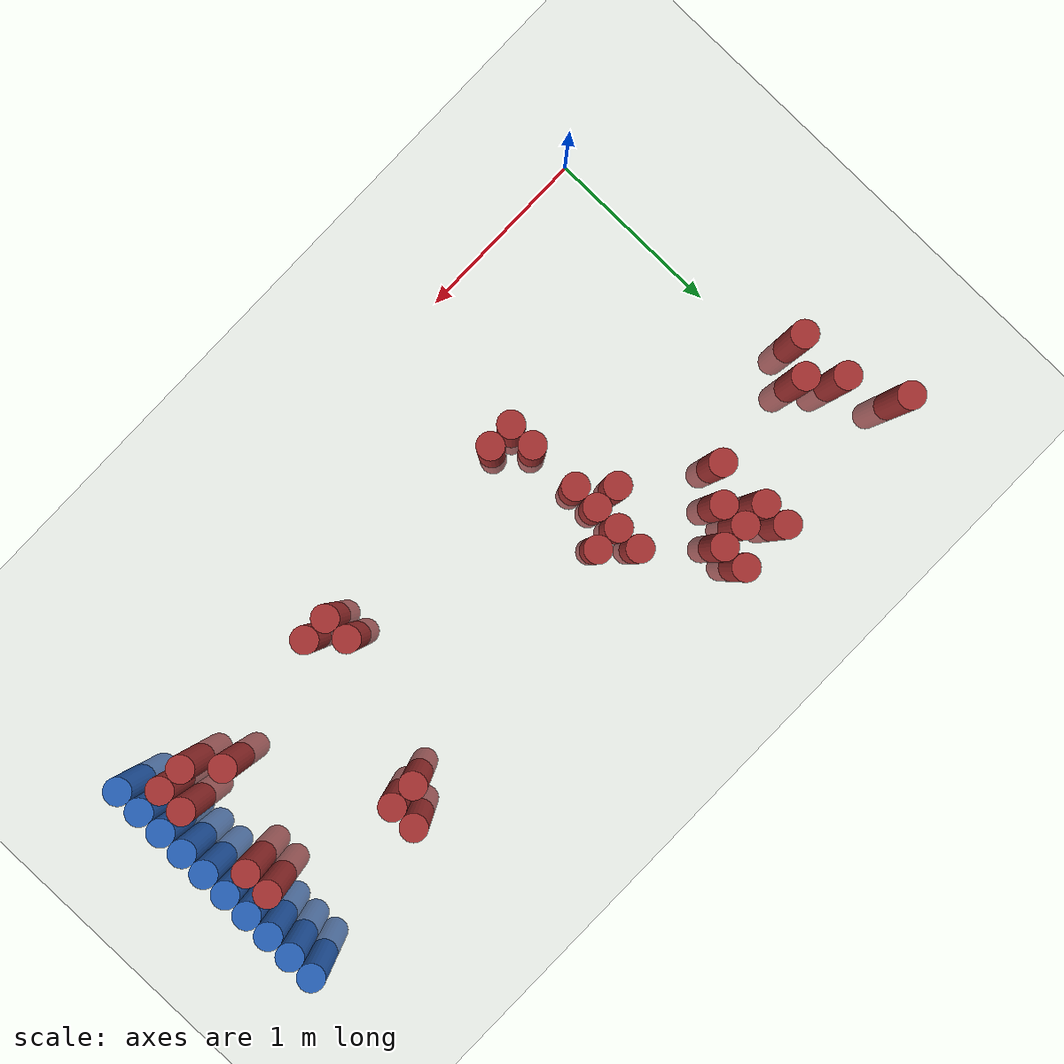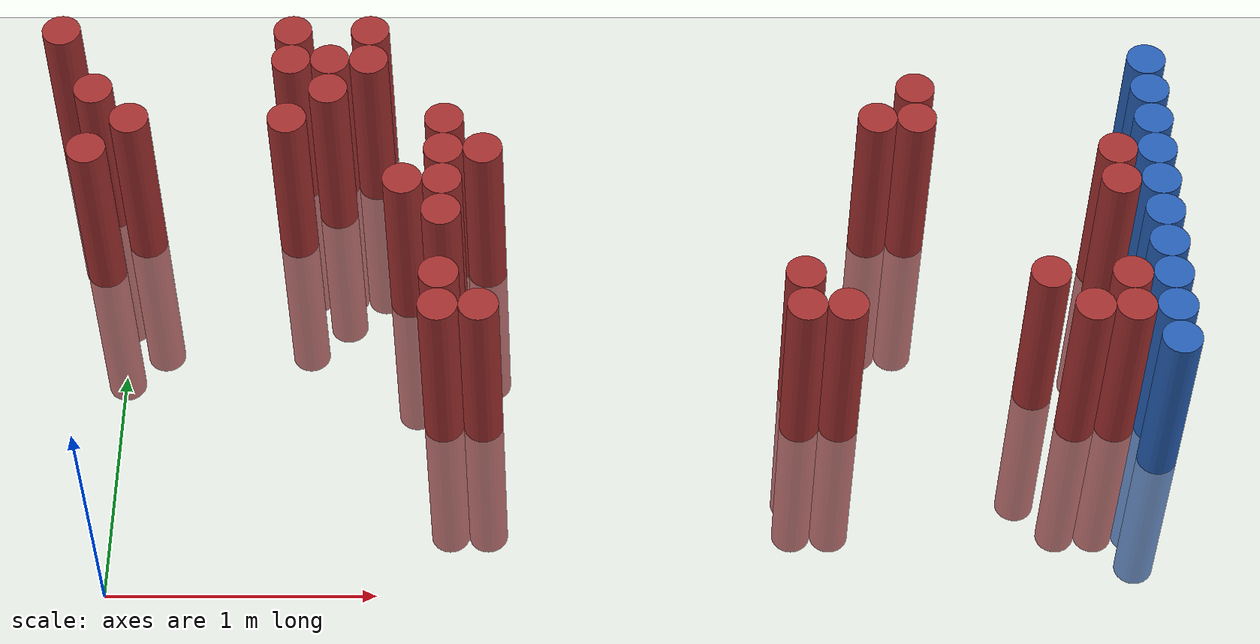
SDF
<sdf version="1.6">
 <world name="default">
  <model name="ground_plane">
   <static>1</static>
   <link name="link">
    <collision name="collision">
     <geometry><plane><normal>0 0 1</normal><size>100 100</size></plane></geometry>
     <surface><friction><ode><mu>100</mu><mu2>50</mu2></ode></friction></surface>
    </collision>
    <visual name="visual">
     <cast_shadows>0</cast_shadows>
     <geometry><plane><normal>0 0 1</normal><size>100 100</size></plane></geometry>
     <material>
      <script><uri>file://media/materials/scripts/gazebo.material</uri><name>Gazebo/Grey</name></script>
     </material>
    </visual>
   </link>
  </model>
  <model name="unit_cylinder_124">
   <static>1</static>
   <pose>3.925000 0.775000 0.000000 0.000000 0.000000 0.000000</pose>
   <link name="link">
    <inertial>
     <mass>1</mass>
     <inertia><ixx>0.145833</ixx><ixy>0</ixy><ixz>0</ixz><iyy>0.145833</iyy><iyz>0</iyz><izz>0.125</izz></inertia>
    </inertial>
    <collision name="collision">
     <geometry><cylinder><radius>0.075000</radius><length>1.5</length></cylinder></geometry>
    </collision>
    <visual name="visual">
     <geometry><cylinder><radius>0.075000</radius><length>1.5</length></cylinder></geometry>
     <material>
      <ambient>0.152000 0.379000 0.720000 1</ambient>
      <diffuse>0.152000 0.379000 0.720000 1</diffuse>
     </material>
     <material>
      <script><name>Gazebo/Grey</name><uri>file://media/materials/scripts/gazebo.material</uri></script>
     </material>
    </visual>
   </link>
  </model>
  <model name="unit_cylinder_126">
   <static>1</static>
   <pose>3.925000 0.925000 0.000000 0.000000 0.000000 0.000000</pose>
   <link name="link">
    <inertial>
     <mass>1</mass>
     <inertia><ixx>0.145833</ixx><ixy>0</ixy><ixz>0</ixz><iyy>0.145833</iyy><iyz>0</iyz><izz>0.125</izz></inertia>
    </inertial>
    <collision name="collision">
     <geometry><cylinder><radius>0.075000</radius><length>1.5</length></cylinder></geometry>
    </collision>
    <visual name="visual">
     <geometry><cylinder><radius>0.075000</radius><length>1.5</length></cylinder></geometry>
     <material>
      <ambient>0.152000 0.379000 0.720000 1</ambient>
      <diffuse>0.152000 0.379000 0.720000 1</diffuse>
     </material>
     <material>
      <script><name>Gazebo/Grey</name><uri>file://media/materials/scripts/gazebo.material</uri></script>
     </material>
    </visual>
   </link>
  </model>
  <model name="unit_cylinder_128">
   <static>1</static>
   <pose>3.925000 1.075000 0.000000 0.000000 0.000000 0.000000</pose>
   <link name="link">
    <inertial>
     <mass>1</mass>
     <inertia><ixx>0.145833</ixx><ixy>0</ixy><ixz>0</ixz><iyy>0.145833</iyy><iyz>0</iyz><izz>0.125</izz></inertia>
    </inertial>
    <collision name="collision">
     <geometry><cylinder><radius>0.075000</radius><length>1.5</length></cylinder></geometry>
    </collision>
    <visual name="visual">
     <geometry><cylinder><radius>0.075000</radius><length>1.5</length></cylinder></geometry>
     <material>
      <ambient>0.152000 0.379000 0.720000 1</ambient>
      <diffuse>0.152000 0.379000 0.720000 1</diffuse>
     </material>
     <material>
      <script><name>Gazebo/Grey</name><uri>file://media/materials/scripts/gazebo.material</uri></script>
     </material>
    </visual>
   </link>
  </model>
  <model name="unit_cylinder_130">
   <static>1</static>
   <pose>3.925000 1.225000 0.000000 0.000000 0.000000 0.000000</pose>
   <link name="link">
    <inertial>
     <mass>1</mass>
     <inertia><ixx>0.145833</ixx><ixy>0</ixy><ixz>0</ixz><iyy>0.145833</iyy><iyz>0</iyz><izz>0.125</izz></inertia>
    </inertial>
    <collision name="collision">
     <geometry><cylinder><radius>0.075000</radius><length>1.5</length></cylinder></geometry>
    </collision>
    <visual name="visual">
     <geometry><cylinder><radius>0.075000</radius><length>1.5</length></cylinder></geometry>
     <material>
      <ambient>0.152000 0.379000 0.720000 1</ambient>
      <diffuse>0.152000 0.379000 0.720000 1</diffuse>
     </material>
     <material>
      <script><name>Gazebo/Grey</name><uri>file://media/materials/scripts/gazebo.material</uri></script>
     </material>
    </visual>
   </link>
  </model>
  <model name="unit_cylinder_132">
   <static>1</static>
   <pose>3.925000 1.375000 0.000000 0.000000 0.000000 0.000000</pose>
   <link name="link">
    <inertial>
     <mass>1</mass>
     <inertia><ixx>0.145833</ixx><ixy>0</ixy><ixz>0</ixz><iyy>0.145833</iyy><iyz>0</iyz><izz>0.125</izz></inertia>
    </inertial>
    <collision name="collision">
     <geometry><cylinder><radius>0.075000</radius><length>1.5</length></cylinder></geometry>
    </collision>
    <visual name="visual">
     <geometry><cylinder><radius>0.075000</radius><length>1.5</length></cylinder></geometry>
     <material>
      <ambient>0.152000 0.379000 0.720000 1</ambient>
      <diffuse>0.152000 0.379000 0.720000 1</diffuse>
     </material>
     <material>
      <script><name>Gazebo/Grey</name><uri>file://media/materials/scripts/gazebo.material</uri></script>
     </material>
    </visual>
   </link>
  </model>
  <model name="unit_cylinder_134">
   <static>1</static>
   <pose>3.925000 1.525000 0.000000 0.000000 0.000000 0.000000</pose>
   <link name="link">
    <inertial>
     <mass>1</mass>
     <inertia><ixx>0.145833</ixx><ixy>0</ixy><ixz>0</ixz><iyy>0.145833</iyy><iyz>0</iyz><izz>0.125</izz></inertia>
    </inertial>
    <collision name="collision">
     <geometry><cylinder><radius>0.075000</radius><length>1.5</length></cylinder></geometry>
    </collision>
    <visual name="visual">
     <geometry><cylinder><radius>0.075000</radius><length>1.5</length></cylinder></geometry>
     <material>
      <ambient>0.152000 0.379000 0.720000 1</ambient>
      <diffuse>0.152000 0.379000 0.720000 1</diffuse>
     </material>
     <material>
      <script><name>Gazebo/Grey</name><uri>file://media/materials/scripts/gazebo.material</uri></script>
     </material>
    </visual>
   </link>
  </model>
  <model name="unit_cylinder_136">
   <static>1</static>
   <pose>3.925000 1.675000 0.000000 0.000000 0.000000 0.000000</pose>
   <link name="link">
    <inertial>
     <mass>1</mass>
     <inertia><ixx>0.145833</ixx><ixy>0</ixy><ixz>0</ixz><iyy>0.145833</iyy><iyz>0</iyz><izz>0.125</izz></inertia>
    </inertial>
    <collision name="collision">
     <geometry><cylinder><radius>0.075000</radius><length>1.5</length></cylinder></geometry>
    </collision>
    <visual name="visual">
     <geometry><cylinder><radius>0.075000</radius><length>1.5</length></cylinder></geometry>
     <material>
      <ambient>0.152000 0.379000 0.720000 1</ambient>
      <diffuse>0.152000 0.379000 0.720000 1</diffuse>
     </material>
     <material>
      <script><name>Gazebo/Grey</name><uri>file://media/materials/scripts/gazebo.material</uri></script>
     </material>
    </visual>
   </link>
  </model>
  <model name="unit_cylinder_138">
   <static>1</static>
   <pose>3.925000 1.825000 0.000000 0.000000 0.000000 0.000000</pose>
   <link name="link">
    <inertial>
     <mass>1</mass>
     <inertia><ixx>0.145833</ixx><ixy>0</ixy><ixz>0</ixz><iyy>0.145833</iyy><iyz>0</iyz><izz>0.125</izz></inertia>
    </inertial>
    <collision name="collision">
     <geometry><cylinder><radius>0.075000</radius><length>1.5</length></cylinder></geometry>
    </collision>
    <visual name="visual">
     <geometry><cylinder><radius>0.075000</radius><length>1.5</length></cylinder></geometry>
     <material>
      <ambient>0.152000 0.379000 0.720000 1</ambient>
      <diffuse>0.152000 0.379000 0.720000 1</diffuse>
     </material>
     <material>
      <script><name>Gazebo/Grey</name><uri>file://media/materials/scripts/gazebo.material</uri></script>
     </material>
    </visual>
   </link>
  </model>
  <model name="unit_cylinder_140">
   <static>1</static>
   <pose>3.925000 1.975000 0.000000 0.000000 0.000000 0.000000</pose>
   <link name="link">
    <inertial>
     <mass>1</mass>
     <inertia><ixx>0.145833</ixx><ixy>0</ixy><ixz>0</ixz><iyy>0.145833</iyy><iyz>0</iyz><izz>0.125</izz></inertia>
    </inertial>
    <collision name="collision">
     <geometry><cylinder><radius>0.075000</radius><length>1.5</length></cylinder></geometry>
    </collision>
    <visual name="visual">
     <geometry><cylinder><radius>0.075000</radius><length>1.5</length></cylinder></geometry>
     <material>
      <ambient>0.152000 0.379000 0.720000 1</ambient>
      <diffuse>0.152000 0.379000 0.720000 1</diffuse>
     </material>
     <material>
      <script><name>Gazebo/Grey</name><uri>file://media/materials/scripts/gazebo.material</uri></script>
     </material>
    </visual>
   </link>
  </model>
  <model name="unit_cylinder_378">
   <static>1</static>
   <pose>-0.275000 2.125000 0.000000 0.000000 0.000000 0.000000</pose>
   <link name="link">
    <inertial>
     <mass>1</mass>
     <inertia><ixx>0.145833</ixx><ixy>0</ixy><ixz>0</ixz><iyy>0.145833</iyy><iyz>0</iyz><izz>0.125</izz></inertia>
    </inertial>
    <collision name="collision">
     <geometry><cylinder><radius>0.075000</radius><length>1.5</length></cylinder></geometry>
    </collision>
    <visual name="visual">
     <geometry><cylinder><radius>0.075000</radius><length>1.5</length></cylinder></geometry>
     <material>
      <ambient>0.648000 0.192000 0.192000 1</ambient>
      <diffuse>0.648000 0.192000 0.192000 1</diffuse>
     </material>
     <material>
      <script><name>Gazebo/Grey</name><uri>file://media/materials/scripts/gazebo.material</uri></script>
     </material>
    </visual>
   </link>
  </model>
  <model name="unit_cylinder_387">
   <static>1</static>
   <pose>-0.125000 1.525000 0.000000 0.000000 0.000000 0.000000</pose>
   <link name="link">
    <inertial>
     <mass>1</mass>
     <inertia><ixx>0.145833</ixx><ixy>0</ixy><ixz>0</ixz><iyy>0.145833</iyy><iyz>0</iyz><izz>0.125</izz></inertia>
    </inertial>
    <collision name="collision">
     <geometry><cylinder><radius>0.075000</radius><length>1.5</length></cylinder></geometry>
    </collision>
    <visual name="visual">
     <geometry><cylinder><radius>0.075000</radius><length>1.5</length></cylinder></geometry>
     <material>
      <ambient>0.648000 0.192000 0.192000 1</ambient>
      <diffuse>0.648000 0.192000 0.192000 1</diffuse>
     </material>
     <material>
      <script><name>Gazebo/Grey</name><uri>file://media/materials/scripts/gazebo.material</uri></script>
     </material>
    </visual>
   </link>
  </model>
  <model name="unit_cylinder_388">
   <static>1</static>
   <pose>-0.125000 1.825000 0.000000 0.000000 0.000000 0.000000</pose>
   <link name="link">
    <inertial>
     <mass>1</mass>
     <inertia><ixx>0.145833</ixx><ixy>0</ixy><ixz>0</ixz><iyy>0.145833</iyy><iyz>0</iyz><izz>0.125</izz></inertia>
    </inertial>
    <collision name="collision">
     <geometry><cylinder><radius>0.075000</radius><length>1.5</length></cylinder></geometry>
    </collision>
    <visual name="visual">
     <geometry><cylinder><radius>0.075000</radius><length>1.5</length></cylinder></geometry>
     <material>
      <ambient>0.648000 0.192000 0.192000 1</ambient>
      <diffuse>0.648000 0.192000 0.192000 1</diffuse>
     </material>
     <material>
      <script><name>Gazebo/Grey</name><uri>file://media/materials/scripts/gazebo.material</uri></script>
     </material>
    </visual>
   </link>
  </model>
  <model name="unit_cylinder_393">
   <static>1</static>
   <pose>0.025000 1.675000 0.000000 0.000000 0.000000 0.000000</pose>
   <link name="link">
    <inertial>
     <mass>1</mass>
     <inertia><ixx>0.145833</ixx><ixy>0</ixy><ixz>0</ixz><iyy>0.145833</iyy><iyz>0</iyz><izz>0.125</izz></inertia>
    </inertial>
    <collision name="collision">
     <geometry><cylinder><radius>0.075000</radius><length>1.5</length></cylinder></geometry>
    </collision>
    <visual name="visual">
     <geometry><cylinder><radius>0.075000</radius><length>1.5</length></cylinder></geometry>
     <material>
      <ambient>0.648000 0.192000 0.192000 1</ambient>
      <diffuse>0.648000 0.192000 0.192000 1</diffuse>
     </material>
     <material>
      <script><name>Gazebo/Grey</name><uri>file://media/materials/scripts/gazebo.material</uri></script>
     </material>
    </visual>
   </link>
  </model>
  <model name="unit_cylinder_405">
   <static>1</static>
   <pose>0.625000 1.675000 0.000000 0.000000 0.000000 0.000000</pose>
   <link name="link">
    <inertial>
     <mass>1</mass>
     <inertia><ixx>0.145833</ixx><ixy>0</ixy><ixz>0</ixz><iyy>0.145833</iyy><iyz>0</iyz><izz>0.125</izz></inertia>
    </inertial>
    <collision name="collision">
     <geometry><cylinder><radius>0.075000</radius><length>1.5</length></cylinder></geometry>
    </collision>
    <visual name="visual">
     <geometry><cylinder><radius>0.075000</radius><length>1.5</length></cylinder></geometry>
     <material>
      <ambient>0.648000 0.192000 0.192000 1</ambient>
      <diffuse>0.648000 0.192000 0.192000 1</diffuse>
     </material>
     <material>
      <script><name>Gazebo/Grey</name><uri>file://media/materials/scripts/gazebo.material</uri></script>
     </material>
    </visual>
   </link>
  </model>
  <model name="unit_cylinder_406">
   <static>1</static>
   <pose>0.625000 1.975000 0.000000 0.000000 0.000000 0.000000</pose>
   <link name="link">
    <inertial>
     <mass>1</mass>
     <inertia><ixx>0.145833</ixx><ixy>0</ixy><ixz>0</ixz><iyy>0.145833</iyy><iyz>0</iyz><izz>0.125</izz></inertia>
    </inertial>
    <collision name="collision">
     <geometry><cylinder><radius>0.075000</radius><length>1.5</length></cylinder></geometry>
    </collision>
    <visual name="visual">
     <geometry><cylinder><radius>0.075000</radius><length>1.5</length></cylinder></geometry>
     <material>
      <ambient>0.648000 0.192000 0.192000 1</ambient>
      <diffuse>0.648000 0.192000 0.192000 1</diffuse>
     </material>
     <material>
      <script><name>Gazebo/Grey</name><uri>file://media/materials/scripts/gazebo.material</uri></script>
     </material>
    </visual>
   </link>
  </model>
  <model name="unit_cylinder_407">
   <static>1</static>
   <pose>0.625000 2.125000 0.000000 0.000000 0.000000 0.000000</pose>
   <link name="link">
    <inertial>
     <mass>1</mass>
     <inertia><ixx>0.145833</ixx><ixy>0</ixy><ixz>0</ixz><iyy>0.145833</iyy><iyz>0</iyz><izz>0.125</izz></inertia>
    </inertial>
    <collision name="collision">
     <geometry><cylinder><radius>0.075000</radius><length>1.5</length></cylinder></geometry>
    </collision>
    <visual name="visual">
     <geometry><cylinder><radius>0.075000</radius><length>1.5</length></cylinder></geometry>
     <material>
      <ambient>0.648000 0.192000 0.192000 1</ambient>
      <diffuse>0.648000 0.192000 0.192000 1</diffuse>
     </material>
     <material>
      <script><name>Gazebo/Grey</name><uri>file://media/materials/scripts/gazebo.material</uri></script>
     </material>
    </visual>
   </link>
  </model>
  <model name="unit_cylinder_410">
   <static>1</static>
   <pose>0.775000 1.825000 0.000000 0.000000 0.000000 0.000000</pose>
   <link name="link">
    <inertial>
     <mass>1</mass>
     <inertia><ixx>0.145833</ixx><ixy>0</ixy><ixz>0</ixz><iyy>0.145833</iyy><iyz>0</iyz><izz>0.125</izz></inertia>
    </inertial>
    <collision name="collision">
     <geometry><cylinder><radius>0.075000</radius><length>1.5</length></cylinder></geometry>
    </collision>
    <visual name="visual">
     <geometry><cylinder><radius>0.075000</radius><length>1.5</length></cylinder></geometry>
     <material>
      <ambient>0.648000 0.192000 0.192000 1</ambient>
      <diffuse>0.648000 0.192000 0.192000 1</diffuse>
     </material>
     <material>
      <script><name>Gazebo/Grey</name><uri>file://media/materials/scripts/gazebo.material</uri></script>
     </material>
    </visual>
   </link>
  </model>
  <model name="unit_cylinder_411">
   <static>1</static>
   <pose>0.775000 1.975000 0.000000 0.000000 0.000000 0.000000</pose>
   <link name="link">
    <inertial>
     <mass>1</mass>
     <inertia><ixx>0.145833</ixx><ixy>0</ixy><ixz>0</ixz><iyy>0.145833</iyy><iyz>0</iyz><izz>0.125</izz></inertia>
    </inertial>
    <collision name="collision">
     <geometry><cylinder><radius>0.075000</radius><length>1.5</length></cylinder></geometry>
    </collision>
    <visual name="visual">
     <geometry><cylinder><radius>0.075000</radius><length>1.5</length></cylinder></geometry>
     <material>
      <ambient>0.648000 0.192000 0.192000 1</ambient>
      <diffuse>0.648000 0.192000 0.192000 1</diffuse>
     </material>
     <material>
      <script><name>Gazebo/Grey</name><uri>file://media/materials/scripts/gazebo.material</uri></script>
     </material>
    </visual>
   </link>
  </model>
  <model name="unit_cylinder_416">
   <static>1</static>
   <pose>0.925000 1.975000 0.000000 0.000000 0.000000 0.000000</pose>
   <link name="link">
    <inertial>
     <mass>1</mass>
     <inertia><ixx>0.145833</ixx><ixy>0</ixy><ixz>0</ixz><iyy>0.145833</iyy><iyz>0</iyz><izz>0.125</izz></inertia>
    </inertial>
    <collision name="collision">
     <geometry><cylinder><radius>0.075000</radius><length>1.5</length></cylinder></geometry>
    </collision>
    <visual name="visual">
     <geometry><cylinder><radius>0.075000</radius><length>1.5</length></cylinder></geometry>
     <material>
      <ambient>0.648000 0.192000 0.192000 1</ambient>
      <diffuse>0.648000 0.192000 0.192000 1</diffuse>
     </material>
     <material>
      <script><name>Gazebo/Grey</name><uri>file://media/materials/scripts/gazebo.material</uri></script>
     </material>
    </visual>
   </link>
  </model>
  <model name="unit_cylinder_417">
   <static>1</static>
   <pose>0.925000 2.125000 0.000000 0.000000 0.000000 0.000000</pose>
   <link name="link">
    <inertial>
     <mass>1</mass>
     <inertia><ixx>0.145833</ixx><ixy>0</ixy><ixz>0</ixz><iyy>0.145833</iyy><iyz>0</iyz><izz>0.125</izz></inertia>
    </inertial>
    <collision name="collision">
     <geometry><cylinder><radius>0.075000</radius><length>1.5</length></cylinder></geometry>
    </collision>
    <visual name="visual">
     <geometry><cylinder><radius>0.075000</radius><length>1.5</length></cylinder></geometry>
     <material>
      <ambient>0.648000 0.192000 0.192000 1</ambient>
      <diffuse>0.648000 0.192000 0.192000 1</diffuse>
     </material>
     <material>
      <script><name>Gazebo/Grey</name><uri>file://media/materials/scripts/gazebo.material</uri></script>
     </material>
    </visual>
   </link>
  </model>
  <model name="unit_cylinder_419">
   <static>1</static>
   <pose>1.075000 1.375000 0.000000 0.000000 0.000000 0.000000</pose>
   <link name="link">
    <inertial>
     <mass>1</mass>
     <inertia><ixx>0.145833</ixx><ixy>0</ixy><ixz>0</ixz><iyy>0.145833</iyy><iyz>0</iyz><izz>0.125</izz></inertia>
    </inertial>
    <collision name="collision">
     <geometry><cylinder><radius>0.075000</radius><length>1.5</length></cylinder></geometry>
    </collision>
    <visual name="visual">
     <geometry><cylinder><radius>0.075000</radius><length>1.5</length></cylinder></geometry>
     <material>
      <ambient>0.648000 0.192000 0.192000 1</ambient>
      <diffuse>0.648000 0.192000 0.192000 1</diffuse>
     </material>
     <material>
      <script><name>Gazebo/Grey</name><uri>file://media/materials/scripts/gazebo.material</uri></script>
     </material>
    </visual>
   </link>
  </model>
  <model name="unit_cylinder_421">
   <static>1</static>
   <pose>1.225000 0.775000 0.000000 0.000000 0.000000 0.000000</pose>
   <link name="link">
    <inertial>
     <mass>1</mass>
     <inertia><ixx>0.145833</ixx><ixy>0</ixy><ixz>0</ixz><iyy>0.145833</iyy><iyz>0</iyz><izz>0.125</izz></inertia>
    </inertial>
    <collision name="collision">
     <geometry><cylinder><radius>0.075000</radius><length>1.5</length></cylinder></geometry>
    </collision>
    <visual name="visual">
     <geometry><cylinder><radius>0.075000</radius><length>1.5</length></cylinder></geometry>
     <material>
      <ambient>0.648000 0.192000 0.192000 1</ambient>
      <diffuse>0.648000 0.192000 0.192000 1</diffuse>
     </material>
     <material>
      <script><name>Gazebo/Grey</name><uri>file://media/materials/scripts/gazebo.material</uri></script>
     </material>
    </visual>
   </link>
  </model>
  <model name="unit_cylinder_422">
   <static>1</static>
   <pose>1.225000 0.925000 0.000000 0.000000 0.000000 0.000000</pose>
   <link name="link">
    <inertial>
     <mass>1</mass>
     <inertia><ixx>0.145833</ixx><ixy>0</ixy><ixz>0</ixz><iyy>0.145833</iyy><iyz>0</iyz><izz>0.125</izz></inertia>
    </inertial>
    <collision name="collision">
     <geometry><cylinder><radius>0.075000</radius><length>1.5</length></cylinder></geometry>
    </collision>
    <visual name="visual">
     <geometry><cylinder><radius>0.075000</radius><length>1.5</length></cylinder></geometry>
     <material>
      <ambient>0.648000 0.192000 0.192000 1</ambient>
      <diffuse>0.648000 0.192000 0.192000 1</diffuse>
     </material>
     <material>
      <script><name>Gazebo/Grey</name><uri>file://media/materials/scripts/gazebo.material</uri></script>
     </material>
    </visual>
   </link>
  </model>
  <model name="unit_cylinder_423">
   <static>1</static>
   <pose>1.225000 1.225000 0.000000 0.000000 0.000000 0.000000</pose>
   <link name="link">
    <inertial>
     <mass>1</mass>
     <inertia><ixx>0.145833</ixx><ixy>0</ixy><ixz>0</ixz><iyy>0.145833</iyy><iyz>0</iyz><izz>0.125</izz></inertia>
    </inertial>
    <collision name="collision">
     <geometry><cylinder><radius>0.075000</radius><length>1.5</length></cylinder></geometry>
    </collision>
    <visual name="visual">
     <geometry><cylinder><radius>0.075000</radius><length>1.5</length></cylinder></geometry>
     <material>
      <ambient>0.648000 0.192000 0.192000 1</ambient>
      <diffuse>0.648000 0.192000 0.192000 1</diffuse>
     </material>
     <material>
      <script><name>Gazebo/Grey</name><uri>file://media/materials/scripts/gazebo.material</uri></script>
     </material>
    </visual>
   </link>
  </model>
  <model name="unit_cylinder_424">
   <static>1</static>
   <pose>1.225000 1.375000 0.000000 0.000000 0.000000 0.000000</pose>
   <link name="link">
    <inertial>
     <mass>1</mass>
     <inertia><ixx>0.145833</ixx><ixy>0</ixy><ixz>0</ixz><iyy>0.145833</iyy><iyz>0</iyz><izz>0.125</izz></inertia>
    </inertial>
    <collision name="collision">
     <geometry><cylinder><radius>0.075000</radius><length>1.5</length></cylinder></geometry>
    </collision>
    <visual name="visual">
     <geometry><cylinder><radius>0.075000</radius><length>1.5</length></cylinder></geometry>
     <material>
      <ambient>0.648000 0.192000 0.192000 1</ambient>
      <diffuse>0.648000 0.192000 0.192000 1</diffuse>
     </material>
     <material>
      <script><name>Gazebo/Grey</name><uri>file://media/materials/scripts/gazebo.material</uri></script>
     </material>
    </visual>
   </link>
  </model>
  <model name="unit_cylinder_425">
   <static>1</static>
   <pose>1.225000 1.525000 0.000000 0.000000 0.000000 0.000000</pose>
   <link name="link">
    <inertial>
     <mass>1</mass>
     <inertia><ixx>0.145833</ixx><ixy>0</ixy><ixz>0</ixz><iyy>0.145833</iyy><iyz>0</iyz><izz>0.125</izz></inertia>
    </inertial>
    <collision name="collision">
     <geometry><cylinder><radius>0.075000</radius><length>1.5</length></cylinder></geometry>
    </collision>
    <visual name="visual">
     <geometry><cylinder><radius>0.075000</radius><length>1.5</length></cylinder></geometry>
     <material>
      <ambient>0.648000 0.192000 0.192000 1</ambient>
      <diffuse>0.648000 0.192000 0.192000 1</diffuse>
     </material>
     <material>
      <script><name>Gazebo/Grey</name><uri>file://media/materials/scripts/gazebo.material</uri></script>
     </material>
    </visual>
   </link>
  </model>
  <model name="unit_cylinder_426">
   <static>1</static>
   <pose>1.225000 1.675000 0.000000 0.000000 0.000000 0.000000</pose>
   <link name="link">
    <inertial>
     <mass>1</mass>
     <inertia><ixx>0.145833</ixx><ixy>0</ixy><ixz>0</ixz><iyy>0.145833</iyy><iyz>0</iyz><izz>0.125</izz></inertia>
    </inertial>
    <collision name="collision">
     <geometry><cylinder><radius>0.075000</radius><length>1.5</length></cylinder></geometry>
    </collision>
    <visual name="visual">
     <geometry><cylinder><radius>0.075000</radius><length>1.5</length></cylinder></geometry>
     <material>
      <ambient>0.648000 0.192000 0.192000 1</ambient>
      <diffuse>0.648000 0.192000 0.192000 1</diffuse>
     </material>
     <material>
      <script><name>Gazebo/Grey</name><uri>file://media/materials/scripts/gazebo.material</uri></script>
     </material>
    </visual>
   </link>
  </model>
  <model name="unit_cylinder_427">
   <static>1</static>
   <pose>1.375000 0.775000 0.000000 0.000000 0.000000 0.000000</pose>
   <link name="link">
    <inertial>
     <mass>1</mass>
     <inertia><ixx>0.145833</ixx><ixy>0</ixy><ixz>0</ixz><iyy>0.145833</iyy><iyz>0</iyz><izz>0.125</izz></inertia>
    </inertial>
    <collision name="collision">
     <geometry><cylinder><radius>0.075000</radius><length>1.5</length></cylinder></geometry>
    </collision>
    <visual name="visual">
     <geometry><cylinder><radius>0.075000</radius><length>1.5</length></cylinder></geometry>
     <material>
      <ambient>0.648000 0.192000 0.192000 1</ambient>
      <diffuse>0.648000 0.192000 0.192000 1</diffuse>
     </material>
     <material>
      <script><name>Gazebo/Grey</name><uri>file://media/materials/scripts/gazebo.material</uri></script>
     </material>
    </visual>
   </link>
  </model>
  <model name="unit_cylinder_428">
   <static>1</static>
   <pose>1.375000 1.525000 0.000000 0.000000 0.000000 0.000000</pose>
   <link name="link">
    <inertial>
     <mass>1</mass>
     <inertia><ixx>0.145833</ixx><ixy>0</ixy><ixz>0</ixz><iyy>0.145833</iyy><iyz>0</iyz><izz>0.125</izz></inertia>
    </inertial>
    <collision name="collision">
     <geometry><cylinder><radius>0.075000</radius><length>1.5</length></cylinder></geometry>
    </collision>
    <visual name="visual">
     <geometry><cylinder><radius>0.075000</radius><length>1.5</length></cylinder></geometry>
     <material>
      <ambient>0.648000 0.192000 0.192000 1</ambient>
      <diffuse>0.648000 0.192000 0.192000 1</diffuse>
     </material>
     <material>
      <script><name>Gazebo/Grey</name><uri>file://media/materials/scripts/gazebo.material</uri></script>
     </material>
    </visual>
   </link>
  </model>
  <model name="unit_cylinder_457">
   <static>1</static>
   <pose>2.575000 0.775000 0.000000 0.000000 0.000000 0.000000</pose>
   <link name="link">
    <inertial>
     <mass>1</mass>
     <inertia><ixx>0.145833</ixx><ixy>0</ixy><ixz>0</ixz><iyy>0.145833</iyy><iyz>0</iyz><izz>0.125</izz></inertia>
    </inertial>
    <collision name="collision">
     <geometry><cylinder><radius>0.075000</radius><length>1.5</length></cylinder></geometry>
    </collision>
    <visual name="visual">
     <geometry><cylinder><radius>0.075000</radius><length>1.5</length></cylinder></geometry>
     <material>
      <ambient>0.648000 0.192000 0.192000 1</ambient>
      <diffuse>0.648000 0.192000 0.192000 1</diffuse>
     </material>
     <material>
      <script><name>Gazebo/Grey</name><uri>file://media/materials/scripts/gazebo.material</uri></script>
     </material>
    </visual>
   </link>
  </model>
  <model name="unit_cylinder_458">
   <static>1</static>
   <pose>2.575000 0.925000 0.000000 0.000000 0.000000 0.000000</pose>
   <link name="link">
    <inertial>
     <mass>1</mass>
     <inertia><ixx>0.145833</ixx><ixy>0</ixy><ixz>0</ixz><iyy>0.145833</iyy><iyz>0</iyz><izz>0.125</izz></inertia>
    </inertial>
    <collision name="collision">
     <geometry><cylinder><radius>0.075000</radius><length>1.5</length></cylinder></geometry>
    </collision>
    <visual name="visual">
     <geometry><cylinder><radius>0.075000</radius><length>1.5</length></cylinder></geometry>
     <material>
      <ambient>0.648000 0.192000 0.192000 1</ambient>
      <diffuse>0.648000 0.192000 0.192000 1</diffuse>
     </material>
     <material>
      <script><name>Gazebo/Grey</name><uri>file://media/materials/scripts/gazebo.material</uri></script>
     </material>
    </visual>
   </link>
  </model>
  <model name="unit_cylinder_463">
   <static>1</static>
   <pose>2.725000 0.775000 0.000000 0.000000 0.000000 0.000000</pose>
   <link name="link">
    <inertial>
     <mass>1</mass>
     <inertia><ixx>0.145833</ixx><ixy>0</ixy><ixz>0</ixz><iyy>0.145833</iyy><iyz>0</iyz><izz>0.125</izz></inertia>
    </inertial>
    <collision name="collision">
     <geometry><cylinder><radius>0.075000</radius><length>1.5</length></cylinder></geometry>
    </collision>
    <visual name="visual">
     <geometry><cylinder><radius>0.075000</radius><length>1.5</length></cylinder></geometry>
     <material>
      <ambient>0.648000 0.192000 0.192000 1</ambient>
      <diffuse>0.648000 0.192000 0.192000 1</diffuse>
     </material>
     <material>
      <script><name>Gazebo/Grey</name><uri>file://media/materials/scripts/gazebo.material</uri></script>
     </material>
    </visual>
   </link>
  </model>
  <model name="unit_cylinder_466">
   <static>1</static>
   <pose>2.875000 1.675000 0.000000 0.000000 0.000000 0.000000</pose>
   <link name="link">
    <inertial>
     <mass>1</mass>
     <inertia><ixx>0.145833</ixx><ixy>0</ixy><ixz>0</ixz><iyy>0.145833</iyy><iyz>0</iyz><izz>0.125</izz></inertia>
    </inertial>
    <collision name="collision">
     <geometry><cylinder><radius>0.075000</radius><length>1.5</length></cylinder></geometry>
    </collision>
    <visual name="visual">
     <geometry><cylinder><radius>0.075000</radius><length>1.5</length></cylinder></geometry>
     <material>
      <ambient>0.648000 0.192000 0.192000 1</ambient>
      <diffuse>0.648000 0.192000 0.192000 1</diffuse>
     </material>
     <material>
      <script><name>Gazebo/Grey</name><uri>file://media/materials/scripts/gazebo.material</uri></script>
     </material>
    </visual>
   </link>
  </model>
  <model name="unit_cylinder_471">
   <static>1</static>
   <pose>3.025000 1.675000 0.000000 0.000000 0.000000 0.000000</pose>
   <link name="link">
    <inertial>
     <mass>1</mass>
     <inertia><ixx>0.145833</ixx><ixy>0</ixy><ixz>0</ixz><iyy>0.145833</iyy><iyz>0</iyz><izz>0.125</izz></inertia>
    </inertial>
    <collision name="collision">
     <geometry><cylinder><radius>0.075000</radius><length>1.5</length></cylinder></geometry>
    </collision>
    <visual name="visual">
     <geometry><cylinder><radius>0.075000</radius><length>1.5</length></cylinder></geometry>
     <material>
      <ambient>0.648000 0.192000 0.192000 1</ambient>
      <diffuse>0.648000 0.192000 0.192000 1</diffuse>
     </material>
     <material>
      <script><name>Gazebo/Grey</name><uri>file://media/materials/scripts/gazebo.material</uri></script>
     </material>
    </visual>
   </link>
  </model>
  <model name="unit_cylinder_472">
   <static>1</static>
   <pose>3.025000 1.825000 0.000000 0.000000 0.000000 0.000000</pose>
   <link name="link">
    <inertial>
     <mass>1</mass>
     <inertia><ixx>0.145833</ixx><ixy>0</ixy><ixz>0</ixz><iyy>0.145833</iyy><iyz>0</iyz><izz>0.125</izz></inertia>
    </inertial>
    <collision name="collision">
     <geometry><cylinder><radius>0.075000</radius><length>1.5</length></cylinder></geometry>
    </collision>
    <visual name="visual">
     <geometry><cylinder><radius>0.075000</radius><length>1.5</length></cylinder></geometry>
     <material>
      <ambient>0.648000 0.192000 0.192000 1</ambient>
      <diffuse>0.648000 0.192000 0.192000 1</diffuse>
     </material>
     <material>
      <script><name>Gazebo/Grey</name><uri>file://media/materials/scripts/gazebo.material</uri></script>
     </material>
    </visual>
   </link>
  </model>
  <model name="unit_cylinder_477">
   <static>1</static>
   <pose>3.475000 0.925000 0.000000 0.000000 0.000000 0.000000</pose>
   <link name="link">
    <inertial>
     <mass>1</mass>
     <inertia><ixx>0.145833</ixx><ixy>0</ixy><ixz>0</ixz><iyy>0.145833</iyy><iyz>0</iyz><izz>0.125</izz></inertia>
    </inertial>
    <collision name="collision">
     <geometry><cylinder><radius>0.075000</radius><length>1.5</length></cylinder></geometry>
    </collision>
    <visual name="visual">
     <geometry><cylinder><radius>0.075000</radius><length>1.5</length></cylinder></geometry>
     <material>
      <ambient>0.648000 0.192000 0.192000 1</ambient>
      <diffuse>0.648000 0.192000 0.192000 1</diffuse>
     </material>
     <material>
      <script><name>Gazebo/Grey</name><uri>file://media/materials/scripts/gazebo.material</uri></script>
     </material>
    </visual>
   </link>
  </model>
  <model name="unit_cylinder_481">
   <static>1</static>
   <pose>3.625000 0.775000 0.000000 0.000000 0.000000 0.000000</pose>
   <link name="link">
    <inertial>
     <mass>1</mass>
     <inertia><ixx>0.145833</ixx><ixy>0</ixy><ixz>0</ixz><iyy>0.145833</iyy><iyz>0</iyz><izz>0.125</izz></inertia>
    </inertial>
    <collision name="collision">
     <geometry><cylinder><radius>0.075000</radius><length>1.5</length></cylinder></geometry>
    </collision>
    <visual name="visual">
     <geometry><cylinder><radius>0.075000</radius><length>1.5</length></cylinder></geometry>
     <material>
      <ambient>0.648000 0.192000 0.192000 1</ambient>
      <diffuse>0.648000 0.192000 0.192000 1</diffuse>
     </material>
     <material>
      <script><name>Gazebo/Grey</name><uri>file://media/materials/scripts/gazebo.material</uri></script>
     </material>
    </visual>
   </link>
  </model>
  <model name="unit_cylinder_495">
   <static>1</static>
   <pose>3.775000 0.775000 0.000000 0.000000 0.000000 0.000000</pose>
   <link name="link">
    <inertial>
     <mass>1</mass>
     <inertia><ixx>0.145833</ixx><ixy>0</ixy><ixz>0</ixz><iyy>0.145833</iyy><iyz>0</iyz><izz>0.125</izz></inertia>
    </inertial>
    <collision name="collision">
     <geometry><cylinder><radius>0.075000</radius><length>1.5</length></cylinder></geometry>
    </collision>
    <visual name="visual">
     <geometry><cylinder><radius>0.075000</radius><length>1.5</length></cylinder></geometry>
     <material>
      <ambient>0.648000 0.192000 0.192000 1</ambient>
      <diffuse>0.648000 0.192000 0.192000 1</diffuse>
     </material>
     <material>
      <script><name>Gazebo/Grey</name><uri>file://media/materials/scripts/gazebo.material</uri></script>
     </material>
    </visual>
   </link>
  </model>
  <model name="unit_cylinder_496">
   <static>1</static>
   <pose>3.775000 0.925000 0.000000 0.000000 0.000000 0.000000</pose>
   <link name="link">
    <inertial>
     <mass>1</mass>
     <inertia><ixx>0.145833</ixx><ixy>0</ixy><ixz>0</ixz><iyy>0.145833</iyy><iyz>0</iyz><izz>0.125</izz></inertia>
    </inertial>
    <collision name="collision">
     <geometry><cylinder><radius>0.075000</radius><length>1.5</length></cylinder></geometry>
    </collision>
    <visual name="visual">
     <geometry><cylinder><radius>0.075000</radius><length>1.5</length></cylinder></geometry>
     <material>
      <ambient>0.648000 0.192000 0.192000 1</ambient>
      <diffuse>0.648000 0.192000 0.192000 1</diffuse>
     </material>
     <material>
      <script><name>Gazebo/Grey</name><uri>file://media/materials/scripts/gazebo.material</uri></script>
     </material>
    </visual>
   </link>
  </model>
  <model name="unit_cylinder_497">
   <static>1</static>
   <pose>3.775000 1.375000 0.000000 0.000000 0.000000 0.000000</pose>
   <link name="link">
    <inertial>
     <mass>1</mass>
     <inertia><ixx>0.145833</ixx><ixy>0</ixy><ixz>0</ixz><iyy>0.145833</iyy><iyz>0</iyz><izz>0.125</izz></inertia>
    </inertial>
    <collision name="collision">
     <geometry><cylinder><radius>0.075000</radius><length>1.5</length></cylinder></geometry>
    </collision>
    <visual name="visual">
     <geometry><cylinder><radius>0.075000</radius><length>1.5</length></cylinder></geometry>
     <material>
      <ambient>0.648000 0.192000 0.192000 1</ambient>
      <diffuse>0.648000 0.192000 0.192000 1</diffuse>
     </material>
     <material>
      <script><name>Gazebo/Grey</name><uri>file://media/materials/scripts/gazebo.material</uri></script>
     </material>
    </visual>
   </link>
  </model>
  <model name="unit_cylinder_498">
   <static>1</static>
   <pose>3.775000 1.525000 0.000000 0.000000 0.000000 0.000000</pose>
   <link name="link">
    <inertial>
     <mass>1</mass>
     <inertia><ixx>0.145833</ixx><ixy>0</ixy><ixz>0</ixz><iyy>0.145833</iyy><iyz>0</iyz><izz>0.125</izz></inertia>
    </inertial>
    <collision name="collision">
     <geometry><cylinder><radius>0.075000</radius><length>1.5</length></cylinder></geometry>
    </collision>
    <visual name="visual">
     <geometry><cylinder><radius>0.075000</radius><length>1.5</length></cylinder></geometry>
     <material>
      <ambient>0.648000 0.192000 0.192000 1</ambient>
      <diffuse>0.648000 0.192000 0.192000 1</diffuse>
     </material>
     <material>
      <script><name>Gazebo/Grey</name><uri>file://media/materials/scripts/gazebo.material</uri></script>
     </material>
    </visual>
   </link>
  </model>
  <model name="unit_cylinder_524">
   <static>1</static>
   <pose>3.925000 0.625000 0.000000 0.000000 0.000000 0.000000</pose>
   <link name="link">
    <inertial>
     <mass>1</mass>
     <inertia><ixx>0.145833</ixx><ixy>0</ixy><ixz>0</ixz><iyy>0.145833</iyy><iyz>0</iyz><izz>0.125</izz></inertia>
    </inertial>
    <collision name="collision">
     <geometry><cylinder><radius>0.075000</radius><length>1.5</length></cylinder></geometry>
    </collision>
    <visual name="visual">
     <geometry><cylinder><radius>0.075000</radius><length>1.5</length></cylinder></geometry>
     <material>
      <ambient>0.152000 0.379000 0.720000 1</ambient>
      <diffuse>0.152000 0.379000 0.720000 1</diffuse>
     </material>
     <material>
      <script><name>Gazebo/Grey</name><uri>file://media/materials/scripts/gazebo.material</uri></script>
     </material>
    </visual>
   </link>
  </model>
  <model name="unit_cylinder_525">
   <static>1</static>
   <pose>3.925000 0.775000 0.000000 0.000000 0.000000 0.000000</pose>
   <link name="link">
    <inertial>
     <mass>1</mass>
     <inertia><ixx>0.145833</ixx><ixy>0</ixy><ixz>0</ixz><iyy>0.145833</iyy><iyz>0</iyz><izz>0.125</izz></inertia>
    </inertial>
    <collision name="collision">
     <geometry><cylinder><radius>0.075000</radius><length>1.5</length></cylinder></geometry>
    </collision>
    <visual name="visual">
     <geometry><cylinder><radius>0.075000</radius><length>1.5</length></cylinder></geometry>
     <material>
      <ambient>0.152000 0.379000 0.720000 1</ambient>
      <diffuse>0.152000 0.379000 0.720000 1</diffuse>
     </material>
     <material>
      <script><name>Gazebo/Grey</name><uri>file://media/materials/scripts/gazebo.material</uri></script>
     </material>
    </visual>
   </link>
  </model>
  <model name="unit_cylinder_526">
   <static>1</static>
   <pose>3.925000 0.925000 0.000000 0.000000 0.000000 0.000000</pose>
   <link name="link">
    <inertial>
     <mass>1</mass>
     <inertia><ixx>0.145833</ixx><ixy>0</ixy><ixz>0</ixz><iyy>0.145833</iyy><iyz>0</iyz><izz>0.125</izz></inertia>
    </inertial>
    <collision name="collision">
     <geometry><cylinder><radius>0.075000</radius><length>1.5</length></cylinder></geometry>
    </collision>
    <visual name="visual">
     <geometry><cylinder><radius>0.075000</radius><length>1.5</length></cylinder></geometry>
     <material>
      <ambient>0.152000 0.379000 0.720000 1</ambient>
      <diffuse>0.152000 0.379000 0.720000 1</diffuse>
     </material>
     <material>
      <script><name>Gazebo/Grey</name><uri>file://media/materials/scripts/gazebo.material</uri></script>
     </material>
    </visual>
   </link>
  </model>
  <model name="unit_cylinder_527">
   <static>1</static>
   <pose>3.925000 1.075000 0.000000 0.000000 0.000000 0.000000</pose>
   <link name="link">
    <inertial>
     <mass>1</mass>
     <inertia><ixx>0.145833</ixx><ixy>0</ixy><ixz>0</ixz><iyy>0.145833</iyy><iyz>0</iyz><izz>0.125</izz></inertia>
    </inertial>
    <collision name="collision">
     <geometry><cylinder><radius>0.075000</radius><length>1.5</length></cylinder></geometry>
    </collision>
    <visual name="visual">
     <geometry><cylinder><radius>0.075000</radius><length>1.5</length></cylinder></geometry>
     <material>
      <ambient>0.152000 0.379000 0.720000 1</ambient>
      <diffuse>0.152000 0.379000 0.720000 1</diffuse>
     </material>
     <material>
      <script><name>Gazebo/Grey</name><uri>file://media/materials/scripts/gazebo.material</uri></script>
     </material>
    </visual>
   </link>
  </model>
  <model name="unit_cylinder_528">
   <static>1</static>
   <pose>3.925000 1.225000 0.000000 0.000000 0.000000 0.000000</pose>
   <link name="link">
    <inertial>
     <mass>1</mass>
     <inertia><ixx>0.145833</ixx><ixy>0</ixy><ixz>0</ixz><iyy>0.145833</iyy><iyz>0</iyz><izz>0.125</izz></inertia>
    </inertial>
    <collision name="collision">
     <geometry><cylinder><radius>0.075000</radius><length>1.5</length></cylinder></geometry>
    </collision>
    <visual name="visual">
     <geometry><cylinder><radius>0.075000</radius><length>1.5</length></cylinder></geometry>
     <material>
      <ambient>0.152000 0.379000 0.720000 1</ambient>
      <diffuse>0.152000 0.379000 0.720000 1</diffuse>
     </material>
     <material>
      <script><name>Gazebo/Grey</name><uri>file://media/materials/scripts/gazebo.material</uri></script>
     </material>
    </visual>
   </link>
  </model>
  <model name="unit_cylinder_529">
   <static>1</static>
   <pose>3.925000 1.375000 0.000000 0.000000 0.000000 0.000000</pose>
   <link name="link">
    <inertial>
     <mass>1</mass>
     <inertia><ixx>0.145833</ixx><ixy>0</ixy><ixz>0</ixz><iyy>0.145833</iyy><iyz>0</iyz><izz>0.125</izz></inertia>
    </inertial>
    <collision name="collision">
     <geometry><cylinder><radius>0.075000</radius><length>1.5</length></cylinder></geometry>
    </collision>
    <visual name="visual">
     <geometry><cylinder><radius>0.075000</radius><length>1.5</length></cylinder></geometry>
     <material>
      <ambient>0.152000 0.379000 0.720000 1</ambient>
      <diffuse>0.152000 0.379000 0.720000 1</diffuse>
     </material>
     <material>
      <script><name>Gazebo/Grey</name><uri>file://media/materials/scripts/gazebo.material</uri></script>
     </material>
    </visual>
   </link>
  </model>
  <model name="unit_cylinder_530">
   <static>1</static>
   <pose>3.925000 1.525000 0.000000 0.000000 0.000000 0.000000</pose>
   <link name="link">
    <inertial>
     <mass>1</mass>
     <inertia><ixx>0.145833</ixx><ixy>0</ixy><ixz>0</ixz><iyy>0.145833</iyy><iyz>0</iyz><izz>0.125</izz></inertia>
    </inertial>
    <collision name="collision">
     <geometry><cylinder><radius>0.075000</radius><length>1.5</length></cylinder></geometry>
    </collision>
    <visual name="visual">
     <geometry><cylinder><radius>0.075000</radius><length>1.5</length></cylinder></geometry>
     <material>
      <ambient>0.152000 0.379000 0.720000 1</ambient>
      <diffuse>0.152000 0.379000 0.720000 1</diffuse>
     </material>
     <material>
      <script><name>Gazebo/Grey</name><uri>file://media/materials/scripts/gazebo.material</uri></script>
     </material>
    </visual>
   </link>
  </model>
  <model name="unit_cylinder_531">
   <static>1</static>
   <pose>3.925000 1.675000 0.000000 0.000000 0.000000 0.000000</pose>
   <link name="link">
    <inertial>
     <mass>1</mass>
     <inertia><ixx>0.145833</ixx><ixy>0</ixy><ixz>0</ixz><iyy>0.145833</iyy><iyz>0</iyz><izz>0.125</izz></inertia>
    </inertial>
    <collision name="collision">
     <geometry><cylinder><radius>0.075000</radius><length>1.5</length></cylinder></geometry>
    </collision>
    <visual name="visual">
     <geometry><cylinder><radius>0.075000</radius><length>1.5</length></cylinder></geometry>
     <material>
      <ambient>0.152000 0.379000 0.720000 1</ambient>
      <diffuse>0.152000 0.379000 0.720000 1</diffuse>
     </material>
     <material>
      <script><name>Gazebo/Grey</name><uri>file://media/materials/scripts/gazebo.material</uri></script>
     </material>
    </visual>
   </link>
  </model>
  <model name="unit_cylinder_532">
   <static>1</static>
   <pose>3.925000 1.825000 0.000000 0.000000 0.000000 0.000000</pose>
   <link name="link">
    <inertial>
     <mass>1</mass>
     <inertia><ixx>0.145833</ixx><ixy>0</ixy><ixz>0</ixz><iyy>0.145833</iyy><iyz>0</iyz><izz>0.125</izz></inertia>
    </inertial>
    <collision name="collision">
     <geometry><cylinder><radius>0.075000</radius><length>1.5</length></cylinder></geometry>
    </collision>
    <visual name="visual">
     <geometry><cylinder><radius>0.075000</radius><length>1.5</length></cylinder></geometry>
     <material>
      <ambient>0.152000 0.379000 0.720000 1</ambient>
      <diffuse>0.152000 0.379000 0.720000 1</diffuse>
     </material>
     <material>
      <script><name>Gazebo/Grey</name><uri>file://media/materials/scripts/gazebo.material</uri></script>
     </material>
    </visual>
   </link>
  </model>
  <model name="unit_cylinder_533">
   <static>1</static>
   <pose>3.925000 1.975000 0.000000 0.000000 0.000000 0.000000</pose>
   <link name="link">
    <inertial>
     <mass>1</mass>
     <inertia><ixx>0.145833</ixx><ixy>0</ixy><ixz>0</ixz><iyy>0.145833</iyy><iyz>0</iyz><izz>0.125</izz></inertia>
    </inertial>
    <collision name="collision">
     <geometry><cylinder><radius>0.075000</radius><length>1.5</length></cylinder></geometry>
    </collision>
    <visual name="visual">
     <geometry><cylinder><radius>0.075000</radius><length>1.5</length></cylinder></geometry>
     <material>
      <ambient>0.152000 0.379000 0.720000 1</ambient>
      <diffuse>0.152000 0.379000 0.720000 1</diffuse>
     </material>
     <material>
      <script><name>Gazebo/Grey</name><uri>file://media/materials/scripts/gazebo.material</uri></script>
     </material>
    </visual>
   </link>
  </model>
 </world>
</sdf>
